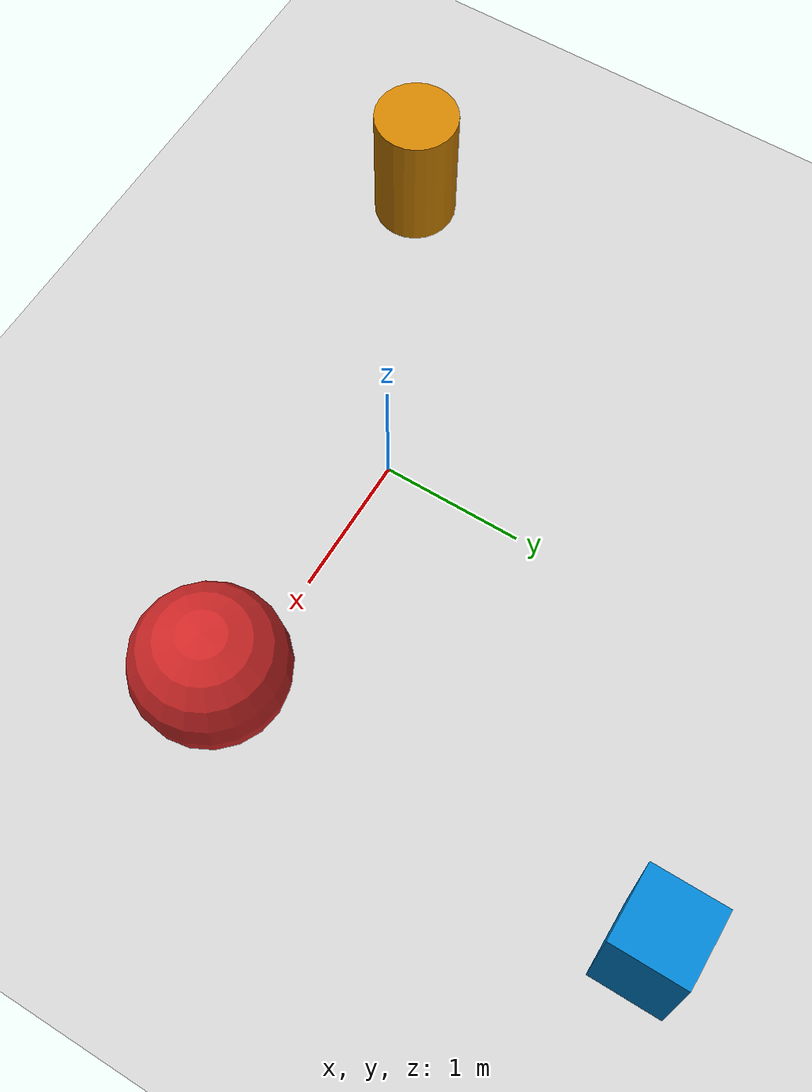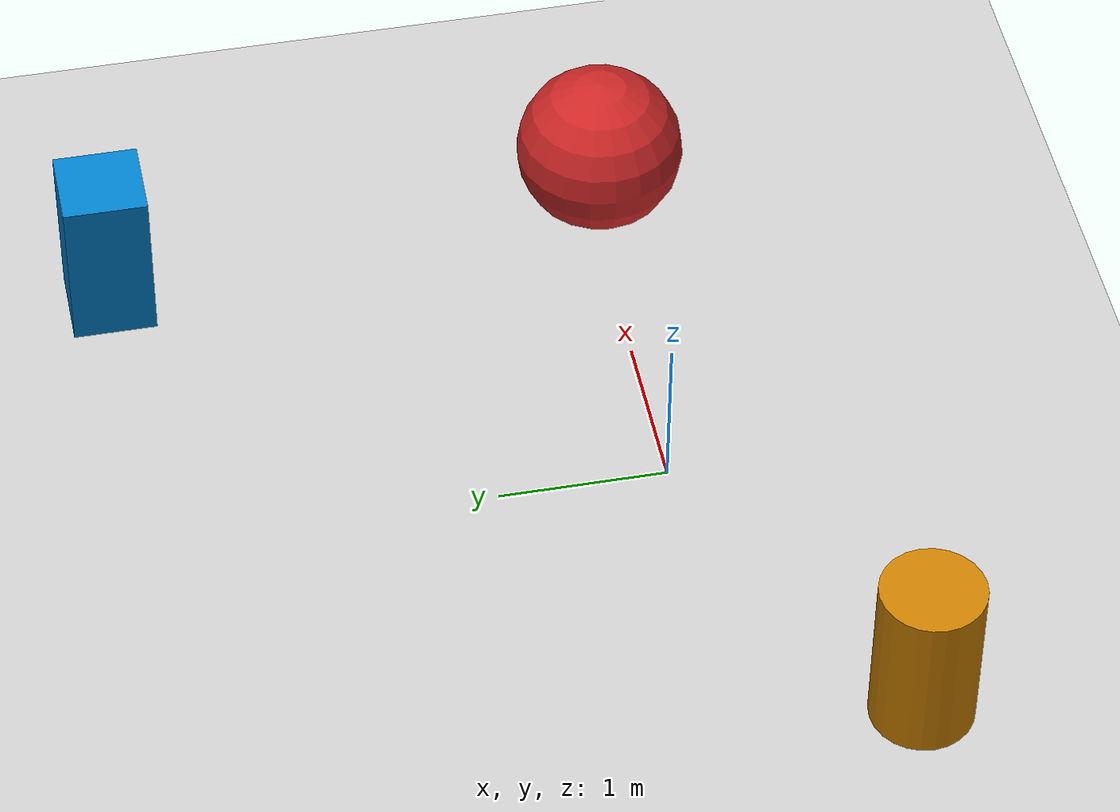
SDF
<?xml version="1.0" ?>
<sdf version="1.6">
  <world name="default">
    <include>
      <uri>model://sun</uri>
    </include>
    <include>
      <uri>model://ground_plane</uri>
    </include>

    <model name='target'>
      <pose>2 0 0.75 0 0 0</pose>
      <link name='link'>
        <inertial>
          <mass>1.0</mass>
          <inertia>
            <ixx>0.1</ixx>
            <ixy>0</ixy>
            <ixz>0</ixz>
            <iyy>0.1</iyy>
            <iyz>0</iyz>
            <izz>0.1</izz>
          </inertia>
        </inertial>
        <collision name='collision'>
          <geometry>
            <sphere>
              <radius>0.5</radius>
            </sphere>
          </geometry>
        </collision>
        <visual name='visual'>
          <geometry>
            <sphere>
              <radius>0.5</radius>
            </sphere>
          </geometry>
          <material>
            <script>
              <uri>file://media/materials/scripts/gazebo.material</uri>
              <name>Gazebo/Red</name>
            </script>
          </material>
        </visual>
      </link>
      <plugin name="target_planar_move" filename="libgazebo_ros_planar_move.so">
        <ros>
          <remapping>cmd_vel:=target_cmd_vel</remapping>
        </ros>
        <update_rate>30</update_rate>
        <publish_rate>30</publish_rate>
        <publish_odom>true</publish_odom>
        <publish_odom_tf>true</publish_odom_tf>
        <odometry_frame>odom</odometry_frame>
        <robot_base_frame>link</robot_base_frame>
      </plugin>
    </model>

    <model name='moving_box_1'>
      <pose>2.0 3.0 0.5 0 0 0</pose>
      <link name='link'>
        <inertial>
          <mass>5.0</mass>
          <inertia><ixx>0.1</ixx><ixy>0</ixy><ixz>0</ixz><iyy>0.1</iyy><iyz>0</iyz><izz>0.1</izz></inertia>
        </inertial>
        <collision name='collision'>
          <geometry><box><size>0.5 0.5 1.0</size></box></geometry>
        </collision>
        <visual name='visual'>
          <geometry><box><size>0.5 0.5 1.0</size></box></geometry>
          <material><ambient>0.0 0.5 0.8 1</ambient><diffuse>0.0 0.5 0.8 1</diffuse></material>
        </visual>
      </link>
      <plugin name="box1_planar_move" filename="libgazebo_ros_planar_move.so">
        <ros>
          <remapping>cmd_vel:=obstacle1_cmd_vel</remapping>
        </ros>
        <update_rate>10</update_rate>
      </plugin>
    </model>

    <model name='moving_cylinder_1'>
      <pose>-2.0 -1.0 0.5 0 0 0</pose>
      <link name='link'>
        <inertial>
          <mass>5.0</mass>
          <inertia><ixx>0.1</ixx><ixy>0</ixy><ixz>0</ixz><iyy>0.1</iyy><iyz>0</iyz><izz>0.1</izz></inertia>
        </inertial>
        <collision name='collision'>
          <geometry><cylinder><radius>0.3</radius><length>1.0</length></cylinder></geometry>
        </collision>
        <visual name='visual'>
          <geometry><cylinder><radius>0.3</radius><length>1.0</length></cylinder></geometry>
          <material><ambient>0.8 0.5 0.0 1</ambient><diffuse>0.8 0.5 0.0 1</diffuse></material>
        </visual>
      </link>
      <plugin name="cylinder1_planar_move" filename="libgazebo_ros_planar_move.so">
        <ros>
          <remapping>cmd_vel:=obstacle2_cmd_vel</remapping>
        </ros>
        <update_rate>10</update_rate>
      </plugin>
    </model>
  </world>
</sdf>
